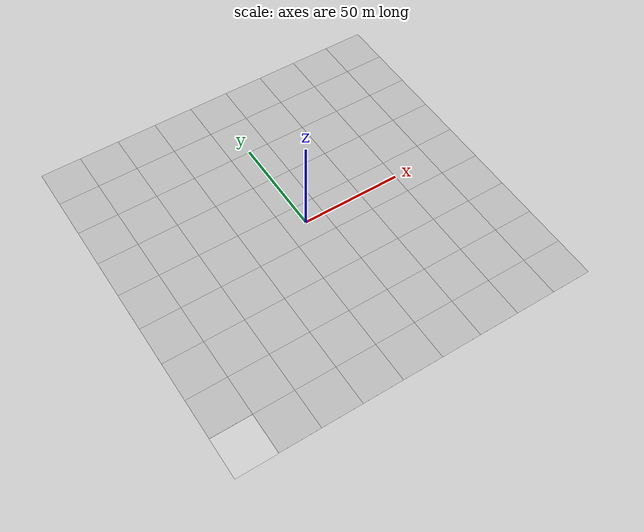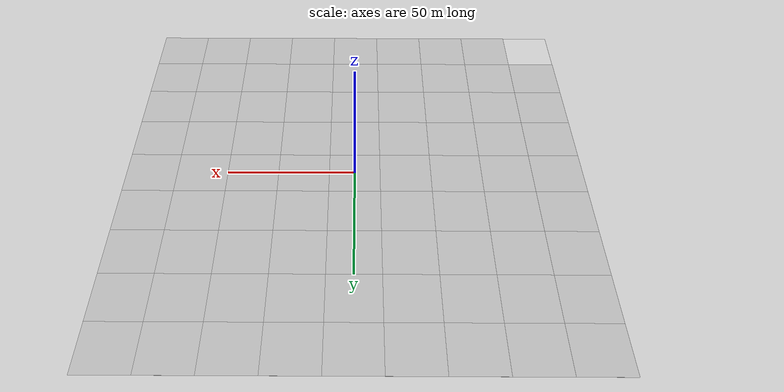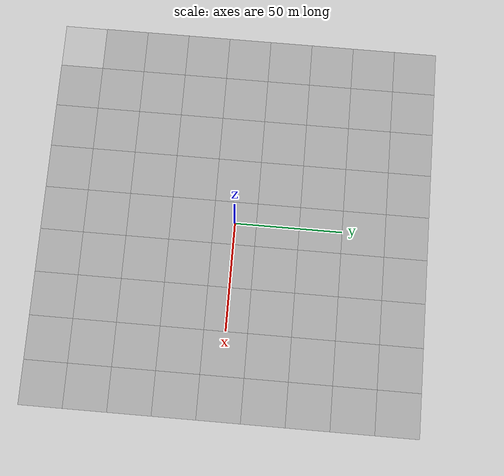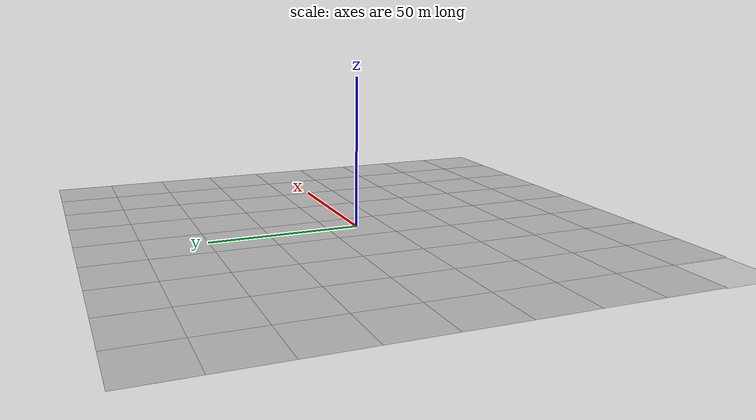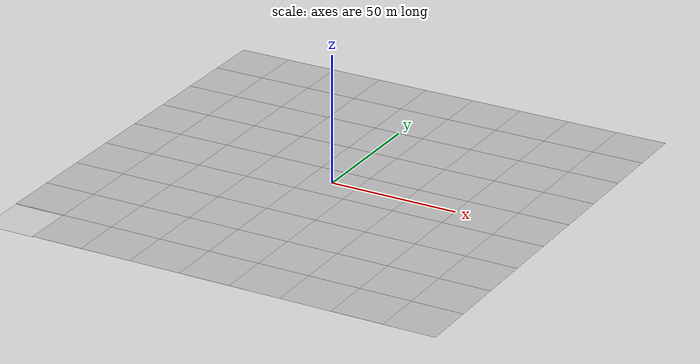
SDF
<sdf version="1.4">
 <world name="powerplant">
  <scene>
   <ambient>0.4 0.4 0.4 1.0</ambient>
   <grid>false</grid>
   <sky><clouds><speed>4</speed></clouds></sky>
  </scene>
  <physics type="ode">
   <gravity>0 0 -9.81</gravity>
   <ode>
    <solver>
     <use_dynamic_moi_rescaling>true</use_dynamic_moi_rescaling>
     <type>quick</type>
     <iters>50</iters>
     <sor>1.4</sor>
    </solver>
    <constraints>
     <cfm>0.0</cfm>
     <erp>0.2</erp>
     <contact_max_correcting_vel>100.0</contact_max_correcting_vel>
     <contact_surface_layer>0.0</contact_surface_layer>
    </constraints>
   </ode>
   <real_time_update_rate>1000</real_time_update_rate>
   <max_step_size>0.001</max_step_size>
  </physics>
  <include><uri>model://sun</uri></include>
  <include><uri>model://mud_plane</uri></include>
  <plugin name="ardupilot_sitl_gazebo_plugin" filename="libardupilot_sitl_gazebo_plugin.so"/>
 </world>
</sdf>

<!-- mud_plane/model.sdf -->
<sdf version='1.4'>
  <model name='mud_plane'>
    <static>true</static>
    <link name='link'>
      <collision name='collision'>
        <geometry>
          <plane>
            <normal>0 0 1</normal>
            <size>500 500</size>
          </plane>
        </geometry>
        <surface>
          <friction>
            <ode>
              <mu>0.5</mu>
              <mu2>.5</mu2>
            </ode>
          </friction>
        </surface>
      </collision>

    <!-- row-1 -->
      <visual name='visual_row-1_n4'>
        <pose>-80 -80 0 0 0 0</pose>

        <cast_shadows>false</cast_shadows>
        <geometry>
          <plane>
            <normal>0 0 1</normal>
            <size>20 20</size>
          </plane>
        </geometry>
        <material>
          <script>
            <uri>model://mud_plane/materials/scripts</uri>
            <uri>model://mud_plane/materials/textures</uri>
            <name>vrc/mud</name>
          </script>
        </material>
      </visual>
      <visual name='visual_row-1_n3'>
        <pose>-60 -80 0 0 0 0</pose>

        <cast_shadows>false</cast_shadows>
        <geometry>
          <plane>
            <normal>0 0 1</normal>
            <size>20 20</size>
          </plane>
        </geometry>
        <material>
          <script>
            <uri>model://mud_plane/materials/scripts</uri>
            <uri>model://mud_plane/materials/textures</uri>
            <name>vrc/mud</name>
          </script>
        </material>
      </visual>

      <visual name='visual_row-1_n2'>
        <pose>-40 -80 0 0 0 0</pose>

        <cast_shadows>false</cast_shadows>
        <geometry>
          <plane>
            <normal>0 0 1</normal>
            <size>20 20</size>
          </plane>
        </geometry>
        <material>
          <script>
            <uri>model://mud_plane/materials/scripts</uri>
            <uri>model://mud_plane/materials/textures</uri>
            <name>vrc/mud</name>
          </script>
        </material>
      </visual>

      <visual name='visual_row-1_n1'>
        <pose>-20 -80 0 0 0 0</pose>

        <cast_shadows>false</cast_shadows>
        <geometry>
          <plane>
            <normal>0 0 1</normal>
            <size>20 20</size>
          </plane>
        </geometry>
        <material>
          <script>
            <uri>model://mud_plane/materials/scripts</uri>
            <uri>model://mud_plane/materials/textures</uri>
            <name>vrc/mud</name>
          </script>
        </material>
      </visual>

      <visual name='visual_row-1_n0'>
        <pose>0 -80 0 0 0 0</pose>

        <cast_shadows>false</cast_shadows>
        <geometry>
          <plane>
            <normal>0 0 1</normal>
            <size>20 20</size>
          </plane>
        </geometry>
        <material>
          <script>
            <uri>model://mud_plane/materials/scripts</uri>
            <uri>model://mud_plane/materials/textures</uri>
            <name>vrc/mud</name>
          </script>
        </material>
      </visual>

      <visual name='visual_row-1_p1'>
        <pose>20 -80 0 0 0 0</pose>

        <cast_shadows>false</cast_shadows>
        <geometry>
          <plane>
            <normal>0 0 1</normal>
            <size>20 20</size>
          </plane>
        </geometry>
        <material>
          <script>
            <uri>model://mud_plane/materials/scripts</uri>
            <uri>model://mud_plane/materials/textures</uri>
            <name>vrc/mud</name>
          </script>
        </material>
      </visual>

      <visual name='visual_row-1_p2'>
        <pose>40 -80 0 0 0 0</pose>

        <cast_shadows>false</cast_shadows>
        <geometry>
          <plane>
            <normal>0 0 1</normal>
            <size>20 20</size>
          </plane>
        </geometry>
        <material>
          <script>
            <uri>model://mud_plane/materials/scripts</uri>
            <uri>model://mud_plane/materials/textures</uri>
            <name>vrc/mud</name>
          </script>
        </material>
      </visual>

      <visual name='visual_row-1_p3'>
        <pose>60 -80 0 0 0 0</pose>

        <cast_shadows>false</cast_shadows>
        <geometry>
          <plane>
            <normal>0 0 1</normal>
            <size>20 20</size>
          </plane>
        </geometry>
        <material>
          <script>
            <uri>model://mud_plane/materials/scripts</uri>
            <uri>model://mud_plane/materials/textures</uri>
            <name>vrc/mud</name>
          </script>
        </material>
      </visual>

      <visual name='visual_row-1_p4'>
        <pose>80 -80 0 0 0 0</pose>

        <cast_shadows>false</cast_shadows>
        <geometry>
          <plane>
            <normal>0 0 1</normal>
            <size>20 20</size>
          </plane>
        </geometry>
        <material>
          <script>
            <uri>model://mud_plane/materials/scripts</uri>
            <uri>model://mud_plane/materials/textures</uri>
            <name>vrc/mud</name>
          </script>
        </material>
      </visual>

    <!-- row0 -->
      <visual name='visual_row0_n4'>
        <pose>-80 -60 0 0 0 0</pose>

        <cast_shadows>false</cast_shadows>
        <geometry>
          <plane>
            <normal>0 0 1</normal>
            <size>20 20</size>
          </plane>
        </geometry>
        <material>
          <script>
            <uri>model://mud_plane/materials/scripts</uri>
            <uri>model://mud_plane/materials/textures</uri>
            <name>vrc/mud</name>
          </script>
        </material>
      </visual>
      <visual name='visual_row0_n3'>
        <pose>-60 -60 0 0 0 0</pose>

        <cast_shadows>false</cast_shadows>
        <geometry>
          <plane>
            <normal>0 0 1</normal>
            <size>20 20</size>
          </plane>
        </geometry>
        <material>
          <script>
            <uri>model://mud_plane/materials/scripts</uri>
            <uri>model://mud_plane/materials/textures</uri>
            <name>vrc/mud</name>
          </script>
        </material>
      </visual>

      <visual name='visual_row0_n2'>
        <pose>-40 -60 0 0 0 0</pose>

        <cast_shadows>false</cast_shadows>
        <geometry>
          <plane>
            <normal>0 0 1</normal>
            <size>20 20</size>
          </plane>
        </geometry>
        <material>
          <script>
            <uri>model://mud_plane/materials/scripts</uri>
            <uri>model://mud_plane/materials/textures</uri>
            <name>vrc/mud</name>
          </script>
        </material>
      </visual>

      <visual name='visual_row0_n1'>
        <pose>-20 -60 0 0 0 0</pose>

        <cast_shadows>false</cast_shadows>
        <geometry>
          <plane>
            <normal>0 0 1</normal>
            <size>20 20</size>
          </plane>
        </geometry>
        <material>
          <script>
            <uri>model://mud_plane/materials/scripts</uri>
            <uri>model://mud_plane/materials/textures</uri>
            <name>vrc/mud</name>
          </script>
        </material>
      </visual>

      <visual name='visual_row0_n0'>
        <pose>0 -60 0 0 0 0</pose>

        <cast_shadows>false</cast_shadows>
        <geometry>
          <plane>
            <normal>0 0 1</normal>
            <size>20 20</size>
          </plane>
        </geometry>
        <material>
          <script>
            <uri>model://mud_plane/materials/scripts</uri>
            <uri>model://mud_plane/materials/textures</uri>
            <name>vrc/mud</name>
          </script>
        </material>
      </visual>

      <visual name='visual_row0_p1'>
        <pose>20 -60 0 0 0 0</pose>

        <cast_shadows>false</cast_shadows>
        <geometry>
          <plane>
            <normal>0 0 1</normal>
            <size>20 20</size>
          </plane>
        </geometry>
        <material>
          <script>
            <uri>model://mud_plane/materials/scripts</uri>
            <uri>model://mud_plane/materials/textures</uri>
            <name>vrc/mud</name>
          </script>
        </material>
      </visual>

      <visual name='visual_row0_p2'>
        <pose>40 -60 0 0 0 0</pose>

        <cast_shadows>false</cast_shadows>
        <geometry>
          <plane>
            <normal>0 0 1</normal>
            <size>20 20</size>
          </plane>
        </geometry>
        <material>
          <script>
            <uri>model://mud_plane/materials/scripts</uri>
            <uri>model://mud_plane/materials/textures</uri>
            <name>vrc/mud</name>
          </script>
        </material>
      </visual>

      <visual name='visual_row0_p3'>
        <pose>60 -60 0 0 0 0</pose>

        <cast_shadows>false</cast_shadows>
        <geometry>
          <plane>
            <normal>0 0 1</normal>
            <size>20 20</size>
          </plane>
        </geometry>
        <material>
          <script>
            <uri>model://mud_plane/materials/scripts</uri>
            <uri>model://mud_plane/materials/textures</uri>
            <name>vrc/mud</name>
          </script>
        </material>
      </visual>

      <visual name='visual_row0_p4'>
        <pose>80 -60 0 0 0 0</pose>

        <cast_shadows>false</cast_shadows>
        <geometry>
          <plane>
            <normal>0 0 1</normal>
            <size>20 20</size>
          </plane>
        </geometry>
        <material>
          <script>
            <uri>model://mud_plane/materials/scripts</uri>
            <uri>model://mud_plane/materials/textures</uri>
            <name>vrc/mud</name>
          </script>
        </material>
      </visual>

    <!-- row1 -->
      <visual name='visual_row1_n4'>
        <pose>-80 -40 0 0 0 0</pose>

        <cast_shadows>false</cast_shadows>
        <geometry>
          <plane>
            <normal>0 0 1</normal>
            <size>20 20</size>
          </plane>
        </geometry>
        <material>
          <script>
            <uri>model://mud_plane/materials/scripts</uri>
            <uri>model://mud_plane/materials/textures</uri>
            <name>vrc/mud</name>
          </script>
        </material>
      </visual>
      <visual name='visual_row1_n3'>
        <pose>-60 -40 0 0 0 0</pose>

        <cast_shadows>false</cast_shadows>
        <geometry>
          <plane>
            <normal>0 0 1</normal>
            <size>20 20</size>
          </plane>
        </geometry>
        <material>
          <script>
            <uri>model://mud_plane/materials/scripts</uri>
            <uri>model://mud_plane/materials/textures</uri>
            <name>vrc/mud</name>
          </script>
        </material>
      </visual>

      <visual name='visual_row1_n2'>
        <pose>-40 -40 0 0 0 0</pose>

        <cast_shadows>false</cast_shadows>
        <geometry>
          <plane>
            <normal>0 0 1</normal>
            <size>20 20</size>
          </plane>
        </geometry>
        <material>
          <script>
            <uri>model://mud_plane/materials/scripts</uri>
            <uri>model://mud_plane/materials/textures</uri>
            <name>vrc/mud</name>
          </script>
        </material>
      </visual>

      <visual name='visual_row1_n1'>
        <pose>-20 -40 0 0 0 0</pose>

        <cast_shadows>false</cast_shadows>
        <geometry>
          <plane>
            <normal>0 0 1</normal>
            <size>20 20</size>
          </plane>
        </geometry>
        <material>
          <script>
            <uri>model://mud_plane/materials/scripts</uri>
            <uri>model://mud_plane/materials/textures</uri>
            <name>vrc/mud</name>
          </script>
        </material>
      </visual>

      <visual name='visual_row1_n0'>
        <pose>0 -40 0 0 0 0</pose>

        <cast_shadows>false</cast_shadows>
        <geometry>
          <plane>
            <normal>0 0 1</normal>
            <size>20 20</size>
          </plane>
        </geometry>
        <material>
          <script>
            <uri>model://mud_plane/materials/scripts</uri>
            <uri>model://mud_plane/materials/textures</uri>
            <name>vrc/mud</name>
          </script>
        </material>
      </visual>

      <visual name='visual_row1_p1'>
        <pose>20 -40 0 0 0 0</pose>

        <cast_shadows>false</cast_shadows>
        <geometry>
          <plane>
            <normal>0 0 1</normal>
            <size>20 20</size>
          </plane>
        </geometry>
        <material>
          <script>
            <uri>model://mud_plane/materials/scripts</uri>
            <uri>model://mud_plane/materials/textures</uri>
            <name>vrc/mud</name>
          </script>
        </material>
      </visual>

      <visual name='visual_row1_p2'>
        <pose>40 -40 0 0 0 0</pose>

        <cast_shadows>false</cast_shadows>
        <geometry>
          <plane>
            <normal>0 0 1</normal>
            <size>20 20</size>
          </plane>
        </geometry>
        <material>
          <script>
            <uri>model://mud_plane/materials/scripts</uri>
            <uri>model://mud_plane/materials/textures</uri>
            <name>vrc/mud</name>
          </script>
        </material>
      </visual>

      <visual name='visual_row1_p3'>
        <pose>60 -40 0 0 0 0</pose>

        <cast_shadows>false</cast_shadows>
        <geometry>
          <plane>
            <normal>0 0 1</normal>
            <size>20 20</size>
          </plane>
        </geometry>
        <material>
          <script>
            <uri>model://mud_plane/materials/scripts</uri>
            <uri>model://mud_plane/materials/textures</uri>
            <name>vrc/mud</name>
          </script>
        </material>
      </visual>

      <visual name='visual_row1_p4'>
        <pose>80 -40 0 0 0 0</pose>

        <cast_shadows>false</cast_shadows>
        <geometry>
          <plane>
            <normal>0 0 1</normal>
            <size>20 20</size>
          </plane>
        </geometry>
        <material>
          <script>
            <uri>model://mud_plane/materials/scripts</uri>
            <uri>model://mud_plane/materials/textures</uri>
            <name>vrc/mud</name>
          </script>
        </material>
      </visual>

    <!-- row2 -->
      <visual name='visual_row2_n4'>
        <pose>-80 -20 0 0 0 0</pose>

        <cast_shadows>false</cast_shadows>
        <geometry>
          <plane>
            <normal>0 0 1</normal>
            <size>20 20</size>
          </plane>
        </geometry>
        <material>
          <script>
            <uri>model://mud_plane/materials/scripts</uri>
            <uri>model://mud_plane/materials/textures</uri>
            <name>vrc/mud</name>
          </script>
        </material>
      </visual>
      <visual name='visual_row2_n3'>
        <pose>-60 -20 0 0 0 0</pose>

        <cast_shadows>false</cast_shadows>
        <geometry>
          <plane>
            <normal>0 0 1</normal>
            <size>20 20</size>
          </plane>
        </geometry>
        <material>
          <script>
            <uri>model://mud_plane/materials/scripts</uri>
            <uri>model://mud_plane/materials/textures</uri>
            <name>vrc/mud</name>
          </script>
        </material>
      </visual>

      <visual name='visual_row2_n2'>
        <pose>-40 -20 0 0 0 0</pose>

        <cast_shadows>false</cast_shadows>
        <geometry>
          <plane>
            <normal>0 0 1</normal>
            <size>20 20</size>
          </plane>
        </geometry>
        <material>
          <script>
            <uri>model://mud_plane/materials/scripts</uri>
            <uri>model://mud_plane/materials/textures</uri>
            <name>vrc/mud</name>
          </script>
        </material>
      </visual>

      <visual name='visual_row2_n1'>
        <pose>-20 -20 0 0 0 0</pose>

        <cast_shadows>false</cast_shadows>
        <geometry>
          <plane>
            <normal>0 0 1</normal>
            <size>20 20</size>
          </plane>
        </geometry>
        <material>
          <script>
            <uri>model://mud_plane/materials/scripts</uri>
            <uri>model://mud_plane/materials/textures</uri>
            <name>vrc/mud</name>
          </script>
        </material>
      </visual>

      <visual name='visual_row2_n0'>
        <pose>0 -20 0 0 0 0</pose>

        <cast_shadows>false</cast_shadows>
        <geometry>
          <plane>
            <normal>0 0 1</normal>
            <size>20 20</size>
          </plane>
        </geometry>
        <material>
          <script>
            <uri>model://mud_plane/materials/scripts</uri>
            <uri>model://mud_plane/materials/textures</uri>
            <name>vrc/mud</name>
          </script>
        </material>
      </visual>

      <visual name='visual_row2_p1'>
        <pose>20 -20 0 0 0 0</pose>

        <cast_shadows>false</cast_shadows>
        <geometry>
          <plane>
            <normal>0 0 1</normal>
            <size>20 20</size>
          </plane>
        </geometry>
        <material>
          <script>
            <uri>model://mud_plane/materials/scripts</uri>
            <uri>model://mud_plane/materials/textures</uri>
            <name>vrc/mud</name>
          </script>
        </material>
      </visual>

      <visual name='visual_row2_p2'>
        <pose>40 -20 0 0 0 0</pose>

        <cast_shadows>false</cast_shadows>
        <geometry>
          <plane>
            <normal>0 0 1</normal>
            <size>20 20</size>
          </plane>
        </geometry>
        <material>
          <script>
            <uri>model://mud_plane/materials/scripts</uri>
            <uri>model://mud_plane/materials/textures</uri>
            <name>vrc/mud</name>
          </script>
        </material>
      </visual>

      <visual name='visual_row2_p3'>
        <pose>60 -20 0 0 0 0</pose>

        <cast_shadows>false</cast_shadows>
        <geometry>
          <plane>
            <normal>0 0 1</normal>
            <size>20 20</size>
          </plane>
        </geometry>
        <material>
          <script>
            <uri>model://mud_plane/materials/scripts</uri>
            <uri>model://mud_plane/materials/textures</uri>
            <name>vrc/mud</name>
          </script>
        </material>
      </visual>

      <visual name='visual_row2_p4'>
        <pose>80 -20 0 0 0 0</pose>

        <cast_shadows>false</cast_shadows>
        <geometry>
          <plane>
            <normal>0 0 1</normal>
            <size>20 20</size>
          </plane>
        </geometry>
        <material>
          <script>
            <uri>model://mud_plane/materials/scripts</uri>
            <uri>model://mud_plane/materials/textures</uri>
            <name>vrc/mud</name>
          </script>
        </material>
      </visual>

    <!-- row3 -->
      <visual name='visual_row3_n4'>
        <pose>-80 0 0 0 0 0</pose>

        <cast_shadows>false</cast_shadows>
        <geometry>
          <plane>
            <normal>0 0 1</normal>
            <size>20 20</size>
          </plane>
        </geometry>
        <material>
          <script>
            <uri>model://mud_plane/materials/scripts</uri>
            <uri>model://mud_plane/materials/textures</uri>
            <name>vrc/mud</name>
          </script>
        </material>
      </visual>
      <visual name='visual_row3_n3'>
        <pose>-60 0 0 0 0 0</pose>

        <cast_shadows>false</cast_shadows>
        <geometry>
          <plane>
            <normal>0 0 1</normal>
            <size>20 20</size>
          </plane>
        </geometry>
        <material>
          <script>
            <uri>model://mud_plane/materials/scripts</uri>
            <uri>model://mud_plane/materials/textures</uri>
            <name>vrc/mud</name>
          </script>
        </material>
      </visual>

      <visual name='visual_row3_n2'>
        <pose>-40 0 0 0 0 0</pose>

        <cast_shadows>false</cast_shadows>
        <geometry>
          <plane>
            <normal>0 0 1</normal>
            <size>20 20</size>
          </plane>
        </geometry>
        <material>
          <script>
            <uri>model://mud_plane/materials/scripts</uri>
            <uri>model://mud_plane/materials/textures</uri>
            <name>vrc/mud</name>
          </script>
        </material>
      </visual>

      <visual name='visual_row3_n1'>
        <pose>-20 0 0 0 0 0</pose>

        <cast_shadows>false</cast_shadows>
        <geometry>
          <plane>
            <normal>0 0 1</normal>
            <size>20 20</size>
          </plane>
        </geometry>
        <material>
          <script>
            <uri>model://mud_plane/materials/scripts</uri>
            <uri>model://mud_plane/materials/textures</uri>
            <name>vrc/mud</name>
          </script>
        </material>
      </visual>

      <visual name='visual_row3_n0'>
        <pose>0 0 0 0 0 0</pose>

        <cast_shadows>false</cast_shadows>
        <geometry>
          <plane>
            <normal>0 0 1</normal>
            <size>20 20</size>
          </plane>
        </geometry>
        <material>
          <script>
            <uri>model://mud_plane/materials/scripts</uri>
            <uri>model://mud_plane/materials/textures</uri>
            <name>vrc/mud</name>
          </script>
        </material>
      </visual>

      <visual name='visual_row3_p1'>
        <pose>20 0 0 0 0 0</pose>

        <cast_shadows>false</cast_shadows>
        <geometry>
          <plane>
            <normal>0 0 1</normal>
            <size>20 20</size>
          </plane>
        </geometry>
        <material>
          <script>
            <uri>model://mud_plane/materials/scripts</uri>
            <uri>model://mud_plane/materials/textures</uri>
            <name>vrc/mud</name>
          </script>
        </material>
      </visual>

      <visual name='visual_row3_p2'>
        <pose>40 0 0 0 0 0</pose>

        <cast_shadows>false</cast_shadows>
        <geometry>
          <plane>
            <normal>0 0 1</normal>
            <size>20 20</size>
          </plane>
        </geometry>
        <material>
          <script>
            <uri>model://mud_plane/materials/scripts</uri>
            <uri>model://mud_plane/materials/textures</uri>
            <name>vrc/mud</name>
          </script>
        </material>
      </visual>

      <visual name='visual_row3_p3'>
        <pose>60 0 0 0 0 0</pose>

        <cast_shadows>false</cast_shadows>
        <geometry>
          <plane>
            <normal>0 0 1</normal>
            <size>20 20</size>
          </plane>
        </geometry>
        <material>
          <script>
            <uri>model://mud_plane/materials/scripts</uri>
            <uri>model://mud_plane/materials/textures</uri>
            <name>vrc/mud</name>
          </script>
        </material>
      </visual>

      <visual name='visual_row3_p4'>
        <pose>80 0 0 0 0 0</pose>

        <cast_shadows>false</cast_shadows>
        <geometry>
          <plane>
            <normal>0 0 1</normal>
            <size>20 20</size>
          </plane>
        </geometry>
        <material>
          <script>
            <uri>model://mud_plane/materials/scripts</uri>
            <uri>model://mud_plane/materials/textures</uri>
            <name>vrc/mud</name>
          </script>
        </material>
      </visual>

    <!-- row4 -->
      <visual name='visual_row4_n4'>
        <pose>-80 20 0 0 0 0</pose>

        <cast_shadows>false</cast_shadows>
        <geometry>
          <plane>
            <normal>0 0 1</normal>
            <size>20 20</size>
          </plane>
        </geometry>
        <material>
          <script>
            <uri>model://mud_plane/materials/scripts</uri>
            <uri>model://mud_plane/materials/textures</uri>
            <name>vrc/mud</name>
          </script>
        </material>
      </visual>
      <visual name='visual_row4_n3'>
        <pose>-60 20 0 0 0 0</pose>

        <cast_shadows>false</cast_shadows>
        <geometry>
          <plane>
            <normal>0 0 1</normal>
            <size>20 20</size>
          </plane>
        </geometry>
        <material>
          <script>
            <uri>model://mud_plane/materials/scripts</uri>
            <uri>model://mud_plane/materials/textures</uri>
            <name>vrc/mud</name>
          </script>
        </material>
      </visual>

      <visual name='visual_row4_n2'>
        <pose>-40 20 0 0 0 0</pose>

        <cast_shadows>false</cast_shadows>
        <geometry>
          <plane>
            <normal>0 0 1</normal>
            <size>20 20</size>
          </plane>
        </geometry>
        <material>
          <script>
            <uri>model://mud_plane/materials/scripts</uri>
            <uri>model://mud_plane/materials/textures</uri>
            <name>vrc/mud</name>
          </script>
        </material>
      </visual>

      <visual name='visual_row4_n1'>
        <pose>-20 20 0 0 0 0</pose>

        <cast_shadows>false</cast_shadows>
        <geometry>
          <plane>
            <normal>0 0 1</normal>
            <size>20 20</size>
          </plane>
        </geometry>
        <material>
          <script>
            <uri>model://mud_plane/materials/scripts</uri>
            <uri>model://mud_plane/materials/textures</uri>
            <name>vrc/mud</name>
          </script>
        </material>
      </visual>

      <visual name='visual_row4_n0'>
        <pose>0 20 0 0 0 0</pose>

        <cast_shadows>false</cast_shadows>
        <geometry>
          <plane>
            <normal>0 0 1</normal>
            <size>20 20</size>
          </plane>
        </geometry>
        <material>
          <script>
            <uri>model://mud_plane/materials/scripts</uri>
            <uri>model://mud_plane/materials/textures</uri>
            <name>vrc/mud</name>
          </script>
        </material>
      </visual>

      <visual name='visual_row4_p1'>
        <pose>20 20 0 0 0 0</pose>

        <cast_shadows>false</cast_shadows>
        <geometry>
          <plane>
            <normal>0 0 1</normal>
            <size>20 20</size>
          </plane>
        </geometry>
        <material>
          <script>
            <uri>model://mud_plane/materials/scripts</uri>
            <uri>model://mud_plane/materials/textures</uri>
            <name>vrc/mud</name>
          </script>
        </material>
      </visual>

      <visual name='visual_row4_p2'>
        <pose>40 20 0 0 0 0</pose>

        <cast_shadows>false</cast_shadows>
        <geometry>
          <plane>
            <normal>0 0 1</normal>
            <size>20 20</size>
          </plane>
        </geometry>
        <material>
          <script>
            <uri>model://mud_plane/materials/scripts</uri>
            <uri>model://mud_plane/materials/textures</uri>
            <name>vrc/mud</name>
          </script>
        </material>
      </visual>

      <visual name='visual_row4_p3'>
        <pose>60 20 0 0 0 0</pose>

        <cast_shadows>false</cast_shadows>
        <geometry>
          <plane>
            <normal>0 0 1</normal>
            <size>20 20</size>
          </plane>
        </geometry>
        <material>
          <script>
            <uri>model://mud_plane/materials/scripts</uri>
            <uri>model://mud_plane/materials/textures</uri>
            <name>vrc/mud</name>
          </script>
        </material>
      </visual>

      <visual name='visual_row4_p4'>
        <pose>80 20 0 0 0 0</pose>

        <cast_shadows>false</cast_shadows>
        <geometry>
          <plane>
            <normal>0 0 1</normal>
            <size>20 20</size>
          </plane>
        </geometry>
        <material>
          <script>
            <uri>model://mud_plane/materials/scripts</uri>
            <uri>model://mud_plane/materials/textures</uri>
            <name>vrc/mud</name>
          </script>
        </material>
      </visual>

    <!-- row5 -->
      <visual name='visual_row5_n4'>
        <pose>-80 40 0 0 0 0</pose>

        <cast_shadows>false</cast_shadows>
        <geometry>
          <plane>
            <normal>0 0 1</normal>
            <size>20 20</size>
          </plane>
        </geometry>
        <material>
          <script>
            <uri>model://mud_plane/materials/scripts</uri>
            <uri>model://mud_plane/materials/textures</uri>
            <name>vrc/mud</name>
          </script>
        </material>
      </visual>
      <visual name='visual_row5_n3'>
        <pose>-60 40 0 0 0 0</pose>

        <cast_shadows>false</cast_shadows>
        <geometry>
          <plane>
            <normal>0 0 1</normal>
            <size>20 20</size>
          </plane>
        </geometry>
        <material>
          <script>
            <uri>model://mud_plane/materials/scripts</uri>
            <uri>model://mud_plane/materials/textures</uri>
            <name>vrc/mud</name>
          </script>
        </material>
      </visual>

      <visual name='visual_row5_n2'>
        <pose>-40 40 0 0 0 0</pose>

        <cast_shadows>false</cast_shadows>
        <geometry>
          <plane>
            <normal>0 0 1</normal>
            <size>20 20</size>
          </plane>
        </geometry>
        <material>
          <script>
            <uri>model://mud_plane/materials/scripts</uri>
            <uri>model://mud_plane/materials/textures</uri>
            <name>vrc/mud</name>
          </script>
        </material>
      </visual>

      <visual name='visual_row5_n1'>
        <pose>-20 40 0 0 0 0</pose>

        <cast_shadows>false</cast_shadows>
        <geometry>
          <plane>
            <normal>0 0 1</normal>
            <size>20 20</size>
          </plane>
        </geometry>
        <material>
          <script>
            <uri>model://mud_plane/materials/scripts</uri>
            <uri>model://mud_plane/materials/textures</uri>
            <name>vrc/mud</name>
          </script>
        </material>
      </visual>

      <visual name='visual_row5_n0'>
        <pose>0 40 0 0 0 0</pose>

        <cast_shadows>false</cast_shadows>
        <geometry>
          <plane>
            <normal>0 0 1</normal>
            <size>20 20</size>
          </plane>
        </geometry>
        <material>
          <script>
            <uri>model://mud_plane/materials/scripts</uri>
            <uri>model://mud_plane/materials/textures</uri>
            <name>vrc/mud</name>
          </script>
        </material>
      </visual>

      <visual name='visual_row5_p1'>
        <pose>20 40 0 0 0 0</pose>

        <cast_shadows>false</cast_shadows>
        <geometry>
          <plane>
            <normal>0 0 1</normal>
            <size>20 20</size>
          </plane>
        </geometry>
        <material>
          <script>
            <uri>model://mud_plane/materials/scripts</uri>
            <uri>model://mud_plane/materials/textures</uri>
            <name>vrc/mud</name>
          </script>
        </material>
      </visual>

      <visual name='visual_row5_p2'>
        <pose>40 40 0 0 0 0</pose>

        <cast_shadows>false</cast_shadows>
        <geometry>
          <plane>
            <normal>0 0 1</normal>
            <size>20 20</size>
          </plane>
        </geometry>
        <material>
          <script>
            <uri>model://mud_plane/materials/scripts</uri>
            <uri>model://mud_plane/materials/textures</uri>
            <name>vrc/mud</name>
          </script>
        </material>
      </visual>

      <visual name='visual_row5_p3'>
        <pose>60 40 0 0 0 0</pose>

        <cast_shadows>false</cast_shadows>
        <geometry>
          <plane>
            <normal>0 0 1</normal>
            <size>20 20</size>
          </plane>
        </geometry>
        <material>
          <script>
            <uri>model://mud_plane/materials/scripts</uri>
            <uri>model://mud_plane/materials/textures</uri>
            <name>vrc/mud</name>
          </script>
        </material>
      </visual>

      <visual name='visual_row5_p4'>
        <pose>80 40 0 0 0 0</pose>

        <cast_shadows>false</cast_shadows>
        <geometry>
          <plane>
            <normal>0 0 1</normal>
            <size>20 20</size>
          </plane>
        </geometry>
        <material>
          <script>
            <uri>model://mud_plane/materials/scripts</uri>
            <uri>model://mud_plane/materials/textures</uri>
            <name>vrc/mud</name>
          </script>
        </material>
      </visual>

    <!-- row6 -->
      <visual name='visual_row6_n4'>
        <pose>-80 60 0 0 0 0</pose>

        <cast_shadows>false</cast_shadows>
        <geometry>
          <plane>
            <normal>0 0 1</normal>
            <size>20 20</size>
          </plane>
        </geometry>
        <material>
          <script>
            <uri>model://mud_plane/materials/scripts</uri>
            <uri>model://mud_plane/materials/textures</uri>
            <name>vrc/mud</name>
          </script>
        </material>
      </visual>
      <visual name='visual_row6_n3'>
        <pose>-60 60 0 0 0 0</pose>

        <cast_shadows>false</cast_shadows>
        <geometry>
          <plane>
            <normal>0 0 1</normal>
            <size>20 20</size>
          </plane>
        </geometry>
        <material>
          <script>
            <uri>model://mud_plane/materials/scripts</uri>
            <uri>model://mud_plane/materials/textures</uri>
            <name>vrc/mud</name>
          </script>
        </material>
      </visual>

      <visual name='visual_row6_n2'>
        <pose>-40 60 0 0 0 0</pose>

        <cast_shadows>false</cast_shadows>
        <geometry>
          <plane>
            <normal>0 0 1</normal>
            <size>20 20</size>
          </plane>
        </geometry>
        <material>
          <script>
            <uri>model://mud_plane/materials/scripts</uri>
            <uri>model://mud_plane/materials/textures</uri>
            <name>vrc/mud</name>
          </script>
        </material>
      </visual>

      <visual name='visual_row6_n1'>
        <pose>-20 60 0 0 0 0</pose>

        <cast_shadows>false</cast_shadows>
        <geometry>
          <plane>
            <normal>0 0 1</normal>
            <size>20 20</size>
          </plane>
        </geometry>
        <material>
          <script>
            <uri>model://mud_plane/materials/scripts</uri>
            <uri>model://mud_plane/materials/textures</uri>
            <name>vrc/mud</name>
          </script>
        </material>
      </visual>

      <visual name='visual_row6_n0'>
        <pose>0 60 0 0 0 0</pose>

        <cast_shadows>false</cast_shadows>
        <geometry>
          <plane>
            <normal>0 0 1</normal>
            <size>20 20</size>
          </plane>
        </geometry>
        <material>
          <script>
            <uri>model://mud_plane/materials/scripts</uri>
            <uri>model://mud_plane/materials/textures</uri>
            <name>vrc/mud</name>
          </script>
        </material>
      </visual>

      <visual name='visual_row6_p1'>
        <pose>20 60 0 0 0 0</pose>

        <cast_shadows>false</cast_shadows>
        <geometry>
          <plane>
            <normal>0 0 1</normal>
            <size>20 20</size>
          </plane>
        </geometry>
        <material>
          <script>
            <uri>model://mud_plane/materials/scripts</uri>
            <uri>model://mud_plane/materials/textures</uri>
            <name>vrc/mud</name>
          </script>
        </material>
      </visual>

      <visual name='visual_row6_p2'>
        <pose>40 60 0 0 0 0</pose>

        <cast_shadows>false</cast_shadows>
        <geometry>
          <plane>
            <normal>0 0 1</normal>
            <size>20 20</size>
          </plane>
        </geometry>
        <material>
          <script>
            <uri>model://mud_plane/materials/scripts</uri>
            <uri>model://mud_plane/materials/textures</uri>
            <name>vrc/mud</name>
          </script>
        </material>
      </visual>

      <visual name='visual_row6_p3'>
        <pose>60 60 0 0 0 0</pose>

        <cast_shadows>false</cast_shadows>
        <geometry>
          <plane>
            <normal>0 0 1</normal>
            <size>20 20</size>
          </plane>
        </geometry>
        <material>
          <script>
            <uri>model://mud_plane/materials/scripts</uri>
            <uri>model://mud_plane/materials/textures</uri>
            <name>vrc/mud</name>
          </script>
        </material>
      </visual>

      <visual name='visual_row6_p4'>
        <pose>80 60 0 0 0 0</pose>

        <cast_shadows>false</cast_shadows>
        <geometry>
          <plane>
            <normal>0 0 1</normal>
            <size>20 20</size>
          </plane>
        </geometry>
        <material>
          <script>
            <uri>model://mud_plane/materials/scripts</uri>
            <uri>model://mud_plane/materials/textures</uri>
            <name>vrc/mud</name>
          </script>
        </material>
      </visual>

    <!-- row7 -->
      <visual name='visual_row7_n4'>
        <pose>-80 80 0 0 0 0</pose>

        <cast_shadows>false</cast_shadows>
        <geometry>
          <plane>
            <normal>0 0 1</normal>
            <size>20 20</size>
          </plane>
        </geometry>
        <material>
          <script>
            <uri>model://mud_plane/materials/scripts</uri>
            <uri>model://mud_plane/materials/textures</uri>
            <name>vrc/mud</name>
          </script>
        </material>
      </visual>
      <visual name='visual_row7_n3'>
        <pose>-60 80 0 0 0 0</pose>

        <cast_shadows>false</cast_shadows>
        <geometry>
          <plane>
            <normal>0 0 1</normal>
            <size>20 20</size>
          </plane>
        </geometry>
        <material>
          <script>
            <uri>model://mud_plane/materials/scripts</uri>
            <uri>model://mud_plane/materials/textures</uri>
            <name>vrc/mud</name>
          </script>
        </material>
      </visual>

      <visual name='visual_row7_n2'>
        <pose>-40 80 0 0 0 0</pose>

        <cast_shadows>false</cast_shadows>
        <geometry>
          <plane>
            <normal>0 0 1</normal>
            <size>20 20</size>
          </plane>
        </geometry>
        <material>
          <script>
            <uri>model://mud_plane/materials/scripts</uri>
            <uri>model://mud_plane/materials/textures</uri>
            <name>vrc/mud</name>
          </script>
        </material>
      </visual>

      <visual name='visual_row7_n1'>
        <pose>-20 80 0 0 0 0</pose>

        <cast_shadows>false</cast_shadows>
        <geometry>
          <plane>
            <normal>0 0 1</normal>
            <size>20 20</size>
          </plane>
        </geometry>
        <material>
          <script>
            <uri>model://mud_plane/materials/scripts</uri>
            <uri>model://mud_plane/materials/textures</uri>
            <name>vrc/mud</name>
          </script>
        </material>
      </visual>

      <visual name='visual_row7_n0'>
        <pose>0 80 0 0 0 0</pose>

        <cast_shadows>false</cast_shadows>
        <geometry>
          <plane>
            <normal>0 0 1</normal>
            <size>20 20</size>
          </plane>
        </geometry>
        <material>
          <script>
            <uri>model://mud_plane/materials/scripts</uri>
            <uri>model://mud_plane/materials/textures</uri>
            <name>vrc/mud</name>
          </script>
        </material>
      </visual>

      <visual name='visual_row7_p1'>
        <pose>20 80 0 0 0 0</pose>

        <cast_shadows>false</cast_shadows>
        <geometry>
          <plane>
            <normal>0 0 1</normal>
            <size>20 20</size>
          </plane>
        </geometry>
        <material>
          <script>
            <uri>model://mud_plane/materials/scripts</uri>
            <uri>model://mud_plane/materials/textures</uri>
            <name>vrc/mud</name>
          </script>
        </material>
      </visual>

      <visual name='visual_row7_p2'>
        <pose>40 80 0 0 0 0</pose>

        <cast_shadows>false</cast_shadows>
        <geometry>
          <plane>
            <normal>0 0 1</normal>
            <size>20 20</size>
          </plane>
        </geometry>
        <material>
          <script>
            <uri>model://mud_plane/materials/scripts</uri>
            <uri>model://mud_plane/materials/textures</uri>
            <name>vrc/mud</name>
          </script>
        </material>
      </visual>

      <visual name='visual_row7_p3'>
        <pose>60 80 0 0 0 0</pose>

        <cast_shadows>false</cast_shadows>
        <geometry>
          <plane>
            <normal>0 0 1</normal>
            <size>20 20</size>
          </plane>
        </geometry>
        <material>
          <script>
            <uri>model://mud_plane/materials/scripts</uri>
            <uri>model://mud_plane/materials/textures</uri>
            <name>vrc/mud</name>
          </script>
        </material>
      </visual>

      <visual name='visual_row7_p4'>
        <pose>80 80 0 0 0 0</pose>

        <cast_shadows>false</cast_shadows>
        <geometry>
          <plane>
            <normal>0 0 1</normal>
            <size>20 20</size>
          </plane>
        </geometry>
        <material>
          <script>
            <uri>model://mud_plane/materials/scripts</uri>
            <uri>model://mud_plane/materials/textures</uri>
            <name>vrc/mud</name>
          </script>
        </material>
      </visual>

    </link>
  </model>
</sdf>
